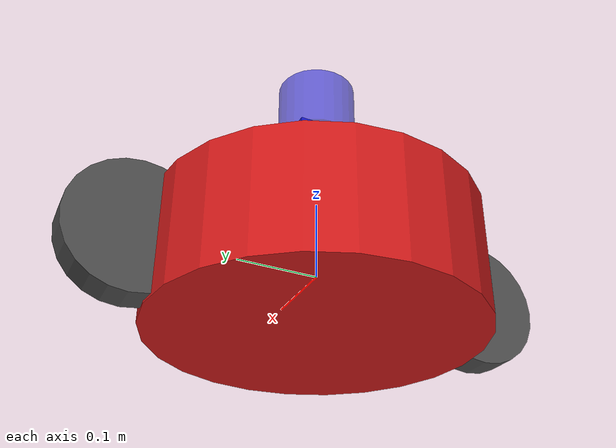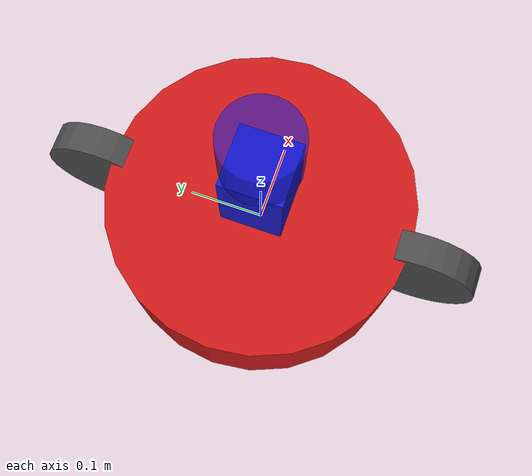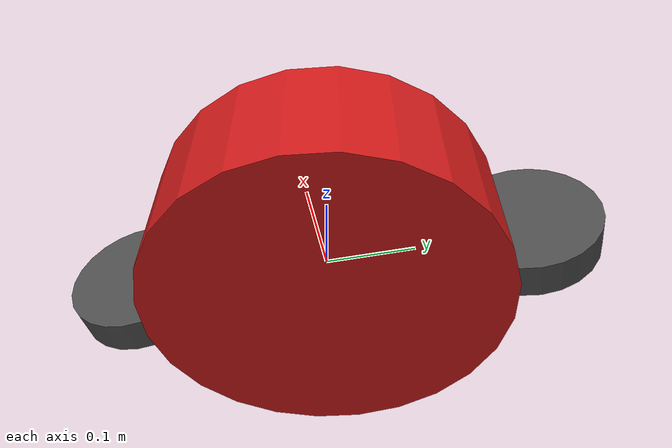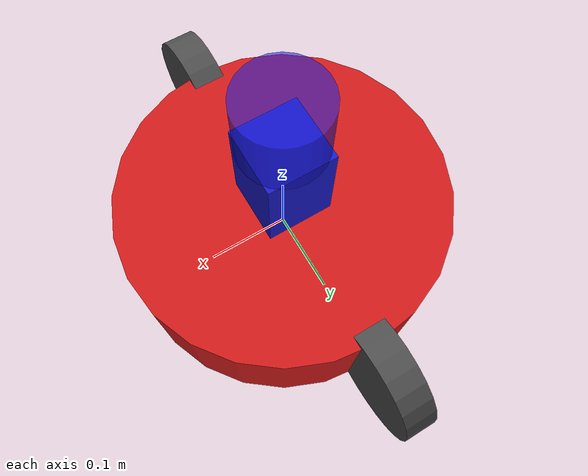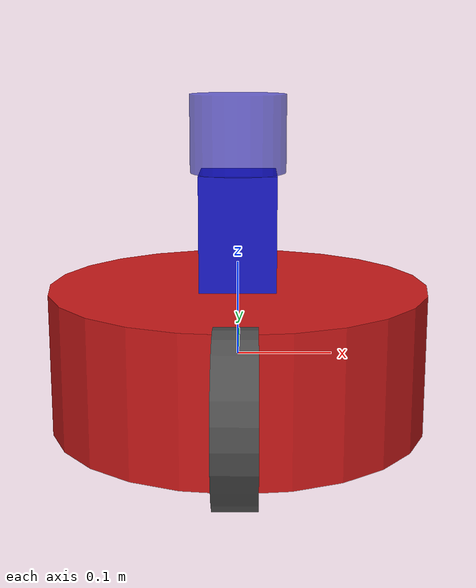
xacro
<?xml version="1.0"?>
<robot xmlns:xacro="http://www.ros.org/wiki/xacro" name="guardian_robot">

  <xacro:property name="base_radius" value="0.20"/>
  <xacro:property name="base_height" value="0.15"/>
  <xacro:property name="wheel_radius" value="0.08"/>
  <xacro:property name="wheel_width" value="0.04"/>

  <link name="base_link">
    <visual>
      <geometry><cylinder radius="${base_radius}" length="${base_height}"/></geometry>
      <material name="red"><color rgba="0.8 0.1 0.1 1.0"/></material>
    </visual>
    <collision><geometry><cylinder radius="${base_radius}" length="${base_height}"/></geometry></collision>
    <inertial>
      <mass value="4.0"/>
      <inertia ixx="0.08" iyy="0.08" izz="0.08" ixy="0" ixz="0" iyz="0"/>
    </inertial>
  </link>

  <xacro:macro name="wheel" params="prefix side">
    <link name="${prefix}_wheel">
      <visual>
        <geometry><cylinder radius="${wheel_radius}" length="${wheel_width}"/></geometry>
        <material name="gray"><color rgba="0.3 0.3 0.3 1"/></material>
      </visual>
      <collision><geometry><cylinder radius="${wheel_radius}" length="${wheel_width}"/></geometry></collision>
      <inertial>
        <mass value="0.8"/>
        <inertia ixx="0.005" iyy="0.005" izz="0.005" ixy="0" ixz="0" iyz="0"/>
      </inertial>
    </link>

    <joint name="${prefix}_wheel_joint" type="continuous">
      <parent link="base_link"/>
      <child link="${prefix}_wheel"/>
      <origin xyz="0 ${side*(base_radius+0.02)} ${-base_height/2 + wheel_radius}" rpy="0 1.57 0"/>
      <axis xyz="0 1 0"/>
    </joint>

    <gazebo reference="${prefix}_wheel">
      <mu1>1.0</mu1>
      <mu2>1.0</mu2>
    </gazebo>
  </xacro:macro>

  <xacro:wheel prefix="left" side="1"/>
  <xacro:wheel prefix="right" side="-1"/>

  <!-- Sensor tower -->
  <link name="sensor_link">
    <visual>
      <geometry><box size="0.08 0.08 0.12"/></geometry>
      <material name="blue"><color rgba="0.1 0.1 0.8 1.0"/></material>
    </visual>
    <collision><geometry><box size="0.08 0.08 0.12"/></geometry></collision>
    <inertial>
      <mass value="0.2"/>
      <inertia ixx="0.001" iyy="0.001" izz="0.001" ixy="0" ixz="0" iyz="0"/>
    </inertial>
  </link>

  <joint name="sensor_joint" type="fixed">
    <parent link="base_link"/>
    <child link="sensor_link"/>
    <origin xyz="0 0 ${base_height/2 + 0.06}" rpy="0 0 0"/>
  </joint>

  <link name="lidar_link">
    <visual>
      <geometry><cylinder radius="0.05" length="0.08"/></geometry>
      <material name="blue_glass"><color rgba="0.1 0.1 0.8 0.6"/></material>
    </visual>
    <collision><geometry><cylinder radius="0.05" length="0.08"/></geometry></collision>
    <inertial>
      <mass value="0.1"/>
      <inertia ixx="0.0001" iyy="0.0001" izz="0.0001" ixy="0" ixz="0" iyz="0"/>
    </inertial>
  </link>

  <joint name="lidar_joint" type="fixed">
    <parent link="sensor_link"/>
    <child link="lidar_link"/>
    <origin xyz="0 0 0.1" rpy="0 0 0"/>
  </joint>

  <gazebo>
    <plugin name="diff_drive" filename="libgazebo_ros_diff_drive.so">
      <command_topic>cmd_vel</command_topic>
      <odometry_topic>odom</odometry_topic>
      <odometry_frame>odom</odometry_frame>
      <robot_base_frame>base_link</robot_base_frame>
      <left_joint>left_wheel_joint</left_joint>
      <right_joint>right_wheel_joint</right_joint>
      <wheel_separation>${2*(base_radius+0.02)}</wheel_separation>
      <wheel_diameter>${2*wheel_radius}</wheel_diameter>
      <max_wheel_torque>20</max_wheel_torque>
      <max_wheel_velocity>20.0</max_wheel_velocity>
      <publish_odom>true</publish_odom>
      <publish_odom_tf>true</publish_odom_tf>
    </plugin>
  </gazebo>

  <gazebo reference="lidar_link">
    <sensor type="ray" name="lidar">
      <pose>0 0 0 0 0 0</pose>
      <visualize>true</visualize>
      <update_rate>10</update_rate>
      <ray>
        <scan>
          <horizontal>
            <samples>360</samples>
            <resolution>1</resolution>
            <min_angle>-3.14159</min_angle>
            <max_angle>3.14159</max_angle>
          </horizontal>
        </scan>
        <range>
          <min>0.12</min>
          <max>12.0</max>
          <resolution>0.03</resolution>
        </range>
        <!-- Softer laser visualization -->
        <display_ray>true</display_ray>
      </ray>
      <plugin name="gazebo_ros_lidar" filename="libgazebo_ros_ray_sensor.so">
        <topicName>scan</topicName>
        <frameName>lidar_link</frameName>
        <radiation_type>infra_red</radiation_type>
      </plugin>
    </sensor>

    <!-- Softer blue laser material with reduced intensity -->
    <material>
      <ambient>0.1 0.1 0.3 0.3</ambient>
      <diffuse>0.2 0.2 0.5 0.4</diffuse>
      <specular>0.1 0.1 0.2 0.2</specular>
      <emissive>0.1 0.1 0.4 0.5</emissive>
    </material>
  </gazebo>

  <!-- Additional settings to reduce laser intensity -->
  <gazebo reference="lidar_link">
    <pose>0 0 0 0 0 0</pose>
    <turnGravityOff>false</turnGravityOff>
    <selfCollide>false</selfCollide>
  </gazebo>

</robot>
